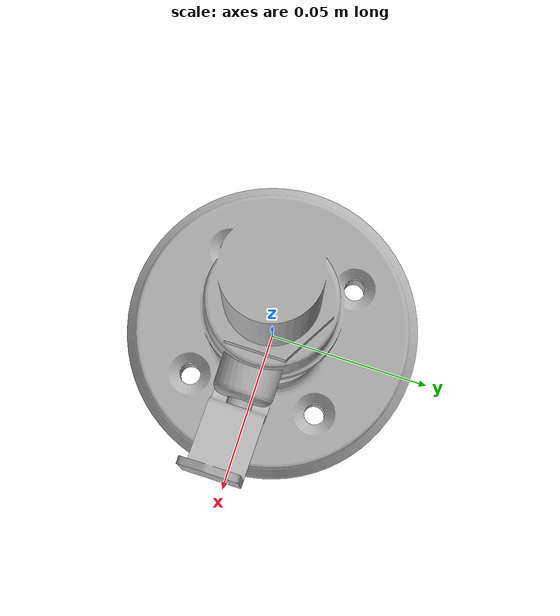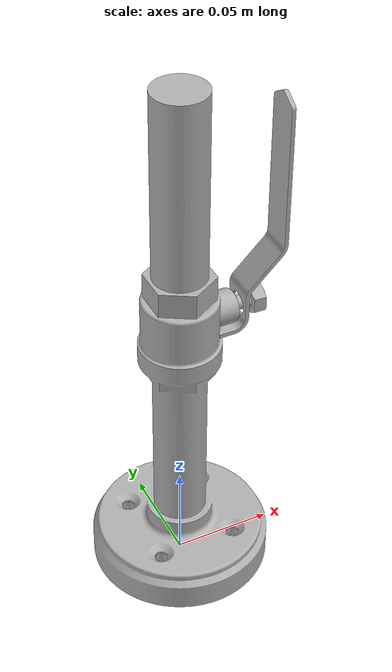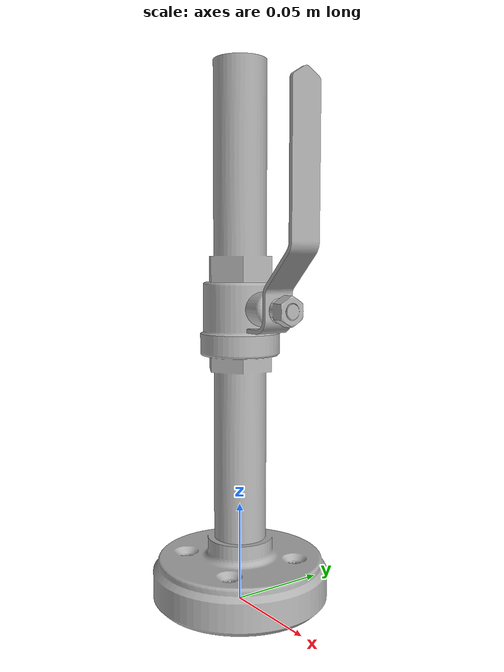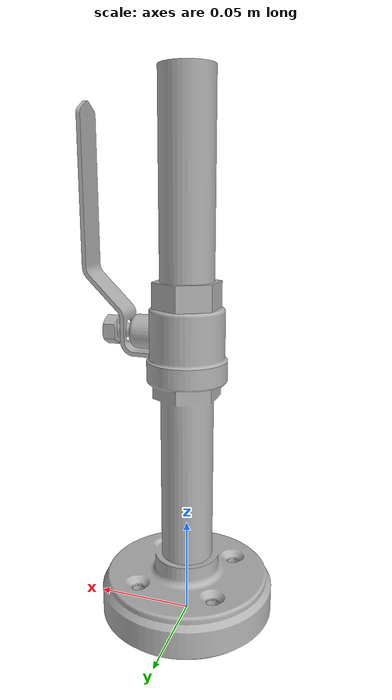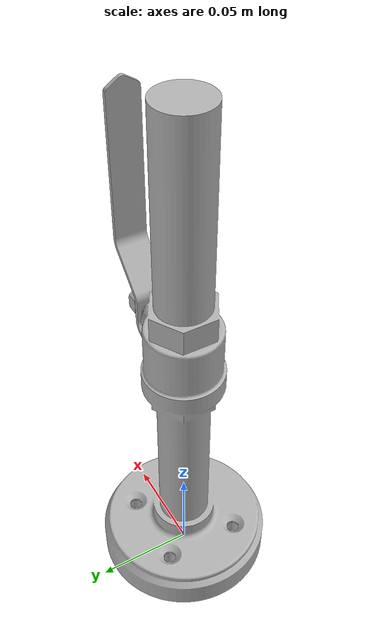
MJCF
<mujoco model="quarter_valve">
  <option iterations="50" timestep="0.001" solver="PGS" gravity="0 0 -9.81" />

  <compiler angle="radian" meshdir="assets" eulerseq="zyx" autolimits="true" />

  <default>
    <joint limited="true" damping="0.01" armature="0.01" frictionloss="0.01" />
    <geom condim="4" contype="1" conaffinity="15" friction="0.9 0.2 0.2" solref="0.001 2" />
    <motor ctrllimited="true" />
    <equality solref="0.001 2" />
    <default class="visualgeom">
      <geom material="visualgeom" condim="1" contype="0" conaffinity="0" />
    </default>
  </default>

  <asset>
    <mesh name="base_link" file="base_link.stl" scale="0.001 0.001 0.001" />
    <mesh name="valve_handle" file="valve_handle.stl" scale="0.001 0.001 0.001" />
    <material name="visualgeom" rgba="0.5 0.9 0.2 1" />
  </asset>

  <worldbody>
    <camera name="fixed" pos="0 -3.0 0.6366597969273802" xyaxes="1 0 0 0 0 1" />
    <camera name="track" mode="trackcom" pos="0 -3.0 0.6366597969273802" xyaxes="1 0 0 0 0 1" />
    <body name="root" pos="0 0 0" quat="1 0 0 0">
      <site name="imu" size="0.01" pos="0 0 0" rgba="0 0 0 0" />
      <geom type="mesh" rgba="0.7 0.7 0.7 1" mesh="base_link" contype="1" conaffinity="0" density="0" group="1" class="visualgeom" />
      <geom type="mesh" rgba="0.7 0.7 0.7 1" mesh="base_link" mass="200" />
      <body name="valve_handle" pos="0.031663 0 0.150446">
        <inertial pos="0.0116641 0 0.0431465" quat="0.992957 0 0.118474 0" mass="0.032047" diaginertia="4.11787e-05 4.1e-05 1.82133e-06" />
        <joint name="Revolute" pos="0 0 0" axis="-1 0 0" range="0 1.5708" actuatorfrcrange="-100 100" />
        <geom pos="-0.031663 0 -0.150446" quat="1 0 0 0" type="mesh" rgba="0.7 0.7 0.7 1" mesh="valve_handle" contype="1" conaffinity="0" density="0" group="1" class="visualgeom" />
        <geom type="mesh" rgba="0.7 0.7 0.7 1" mesh="valve_handle" pos="-0.031663 0 -0.150446" quat="1 0 0 0" />
      </body>
    </body>
  </worldbody>

  <sensor>
    <framequat name="orientation" objtype="site" noise="0.001" objname="imu" />
    <gyro name="angular-velocity" site="imu" noise="0.005" cutoff="34.9" />
  </sensor>
</mujoco>
